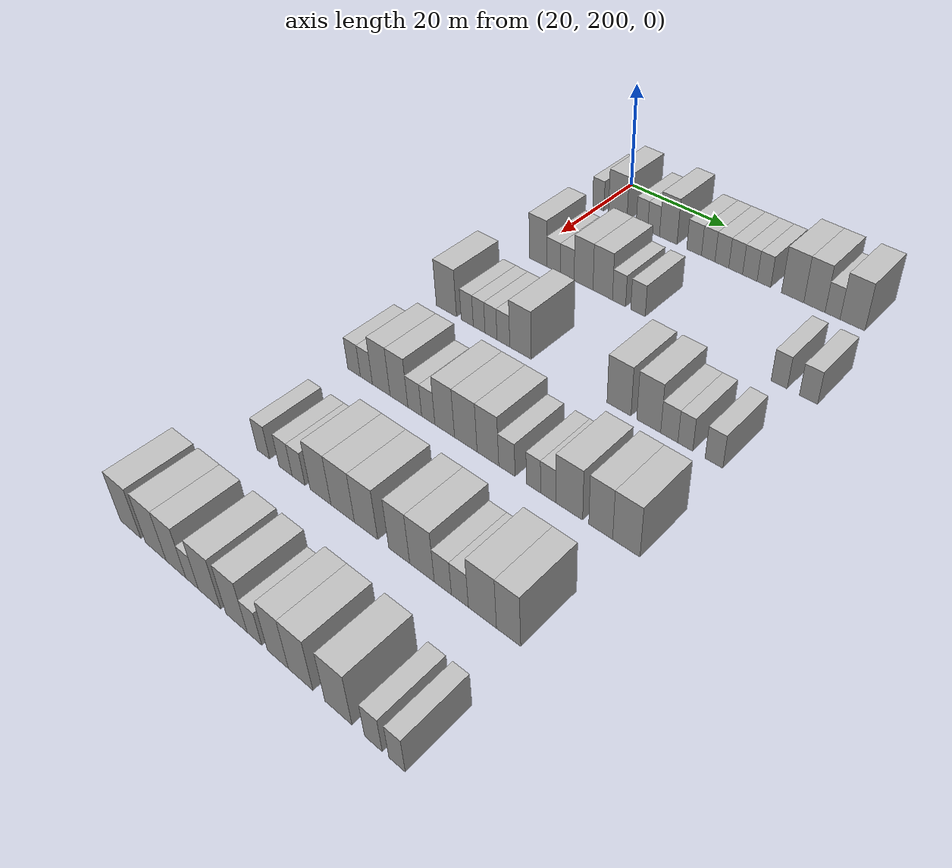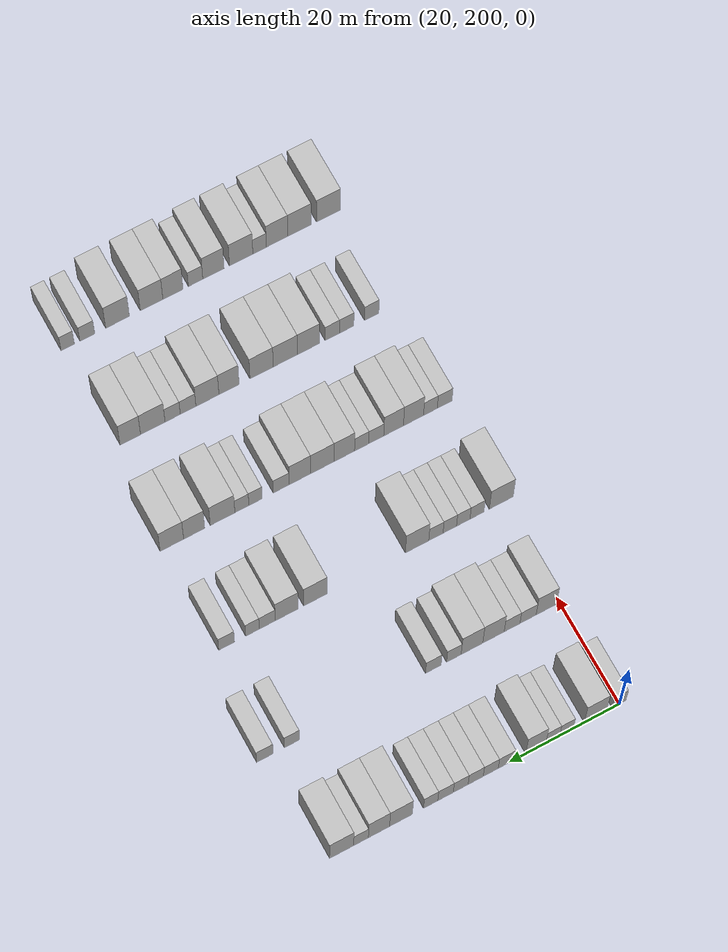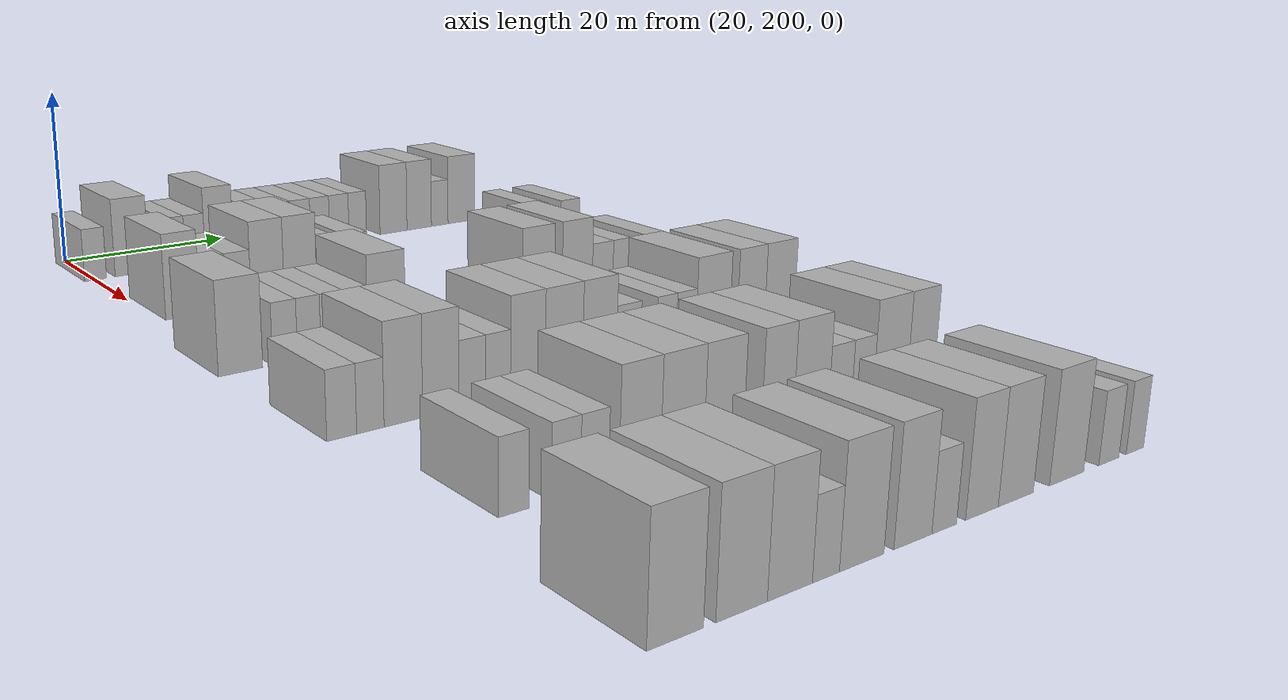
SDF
<sdf version="1.6">
 <world name="default">
  <model name="building_141">
   <static>1</static>
   <pose>25.0000 200.0937 0 0.000000 0.000000 0.000000</pose>
   <link name="link">
    <pose>0 0 3.00 0 0 0</pose>
    <collision name="collision"><geometry><box><size>10.0000 2.5345 6.0000</size></box></geometry></collision>
    <visual name="visual">
     <cast_shadows>0</cast_shadows>
     <geometry><box><size>10.0000 2.5345 6.0000</size></box></geometry>
     <material>
      <script>
       <uri>model://HANNAS_wall/materials/scripts</uri>
       <uri>model://HANNAS_wall/materials/textures</uri>
       <name>vrc/HANNAS_wall</name>
      </script>
     </material>
    </visual>
   </link>
  </model>
  <model name="building_142">
   <static>1</static>
   <pose>25.0000 204.3866 0 0.000000 0.000000 0.000000</pose>
   <link name="link">
    <pose>0 0 4.50 0 0 0</pose>
    <collision name="collision"><geometry><box><size>10.0000 4.0513 9.0000</size></box></geometry></collision>
    <visual name="visual">
     <cast_shadows>0</cast_shadows>
     <geometry><box><size>10.0000 4.0513 9.0000</size></box></geometry>
     <material>
      <script>
       <uri>model://HANNAS_wall/materials/scripts</uri>
       <uri>model://HANNAS_wall/materials/textures</uri>
       <name>vrc/HANNAS_wall</name>
      </script>
     </material>
    </visual>
   </link>
  </model>
  <model name="building_143">
   <static>1</static>
   <pose>25.0000 209.6426 0 0.000000 0.000000 0.000000</pose>
   <link name="link">
    <pose>0 0 3.00 0 0 0</pose>
    <collision name="collision"><geometry><box><size>10.0000 2.4606 6.0000</size></box></geometry></collision>
    <visual name="visual">
     <cast_shadows>0</cast_shadows>
     <geometry><box><size>10.0000 2.4606 6.0000</size></box></geometry>
     <material>
      <script>
       <uri>model://HANNAS_wall/materials/scripts</uri>
       <uri>model://HANNAS_wall/materials/textures</uri>
       <name>vrc/HANNAS_wall</name>
      </script>
     </material>
    </visual>
   </link>
  </model>
  <model name="building_144">
   <static>1</static>
   <pose>25.0000 212.1279 0 0.000000 0.000000 0.000000</pose>
   <link name="link">
    <pose>0 0 3.00 0 0 0</pose>
    <collision name="collision"><geometry><box><size>10.0000 2.5100 6.0000</size></box></geometry></collision>
    <visual name="visual">
     <cast_shadows>0</cast_shadows>
     <geometry><box><size>10.0000 2.5100 6.0000</size></box></geometry>
     <material>
      <script>
       <uri>model://HANNAS_wall/materials/scripts</uri>
       <uri>model://HANNAS_wall/materials/textures</uri>
       <name>vrc/HANNAS_wall</name>
      </script>
     </material>
    </visual>
   </link>
  </model>
  <model name="building_145">
   <static>1</static>
   <pose>25.0000 215.2082 0 0.000000 0.000000 0.000000</pose>
   <link name="link">
    <pose>0 0 4.50 0 0 0</pose>
    <collision name="collision"><geometry><box><size>10.0000 3.6506 9.0000</size></box></geometry></collision>
    <visual name="visual">
     <cast_shadows>0</cast_shadows>
     <geometry><box><size>10.0000 3.6506 9.0000</size></box></geometry>
     <material>
      <script>
       <uri>model://HANNAS_wall/materials/scripts</uri>
       <uri>model://HANNAS_wall/materials/textures</uri>
       <name>vrc/HANNAS_wall</name>
      </script>
     </material>
    </visual>
   </link>
  </model>
  <model name="building_146">
   <static>1</static>
   <pose>25.0000 220.5173 0 0.000000 0.000000 0.000000</pose>
   <link name="link">
    <pose>0 0 3.00 0 0 0</pose>
    <collision name="collision"><geometry><box><size>10.0000 2.9675 6.0000</size></box></geometry></collision>
    <visual name="visual">
     <cast_shadows>0</cast_shadows>
     <geometry><box><size>10.0000 2.9675 6.0000</size></box></geometry>
     <material>
      <script>
       <uri>model://HANNAS_wall/materials/scripts</uri>
       <uri>model://HANNAS_wall/materials/textures</uri>
       <name>vrc/HANNAS_wall</name>
      </script>
     </material>
    </visual>
   </link>
  </model>
  <model name="building_147">
   <static>1</static>
   <pose>25.0000 223.3481 0 0.000000 0.000000 0.000000</pose>
   <link name="link">
    <pose>0 0 3.00 0 0 0</pose>
    <collision name="collision"><geometry><box><size>10.0000 2.6942 6.0000</size></box></geometry></collision>
    <visual name="visual">
     <cast_shadows>0</cast_shadows>
     <geometry><box><size>10.0000 2.6942 6.0000</size></box></geometry>
     <material>
      <script>
       <uri>model://HANNAS_wall/materials/scripts</uri>
       <uri>model://HANNAS_wall/materials/textures</uri>
       <name>vrc/HANNAS_wall</name>
      </script>
     </material>
    </visual>
   </link>
  </model>
  <model name="building_148">
   <static>1</static>
   <pose>25.0000 226.0528 0 0.000000 0.000000 0.000000</pose>
   <link name="link">
    <pose>0 0 3.00 0 0 0</pose>
    <collision name="collision"><geometry><box><size>10.0000 2.7152 6.0000</size></box></geometry></collision>
    <visual name="visual">
     <cast_shadows>0</cast_shadows>
     <geometry><box><size>10.0000 2.7152 6.0000</size></box></geometry>
     <material>
      <script>
       <uri>model://HANNAS_wall/materials/scripts</uri>
       <uri>model://HANNAS_wall/materials/textures</uri>
       <name>vrc/HANNAS_wall</name>
      </script>
     </material>
    </visual>
   </link>
  </model>
  <model name="building_149">
   <static>1</static>
   <pose>25.0000 228.7446 0 0.000000 0.000000 0.000000</pose>
   <link name="link">
    <pose>0 0 3.00 0 0 0</pose>
    <collision name="collision"><geometry><box><size>10.0000 2.6684 6.0000</size></box></geometry></collision>
    <visual name="visual">
     <cast_shadows>0</cast_shadows>
     <geometry><box><size>10.0000 2.6684 6.0000</size></box></geometry>
     <material>
      <script>
       <uri>model://HANNAS_wall/materials/scripts</uri>
       <uri>model://HANNAS_wall/materials/textures</uri>
       <name>vrc/HANNAS_wall</name>
      </script>
     </material>
    </visual>
   </link>
  </model>
  <model name="building_150">
   <static>1</static>
   <pose>25.0000 231.4614 0 0.000000 0.000000 0.000000</pose>
   <link name="link">
    <pose>0 0 3.00 0 0 0</pose>
    <collision name="collision"><geometry><box><size>10.0000 2.7652 6.0000</size></box></geometry></collision>
    <visual name="visual">
     <cast_shadows>0</cast_shadows>
     <geometry><box><size>10.0000 2.7652 6.0000</size></box></geometry>
     <material>
      <script>
       <uri>model://HANNAS_wall/materials/scripts</uri>
       <uri>model://HANNAS_wall/materials/textures</uri>
       <name>vrc/HANNAS_wall</name>
      </script>
     </material>
    </visual>
   </link>
  </model>
  <model name="building_151">
   <static>1</static>
   <pose>25.0000 234.1210 0 0.000000 0.000000 0.000000</pose>
   <link name="link">
    <pose>0 0 3.00 0 0 0</pose>
    <collision name="collision"><geometry><box><size>10.0000 2.5541 6.0000</size></box></geometry></collision>
    <visual name="visual">
     <cast_shadows>0</cast_shadows>
     <geometry><box><size>10.0000 2.5541 6.0000</size></box></geometry>
     <material>
      <script>
       <uri>model://HANNAS_wall/materials/scripts</uri>
       <uri>model://HANNAS_wall/materials/textures</uri>
       <name>vrc/HANNAS_wall</name>
      </script>
     </material>
    </visual>
   </link>
  </model>
  <model name="building_152">
   <static>1</static>
   <pose>25.0000 239.4312 0 0.000000 0.000000 0.000000</pose>
   <link name="link">
    <pose>0 0 4.50 0 0 0</pose>
    <collision name="collision"><geometry><box><size>10.0000 4.0662 9.0000</size></box></geometry></collision>
    <visual name="visual">
     <cast_shadows>0</cast_shadows>
     <geometry><box><size>10.0000 4.0662 9.0000</size></box></geometry>
     <material>
      <script>
       <uri>model://HANNAS_wall/materials/scripts</uri>
       <uri>model://HANNAS_wall/materials/textures</uri>
       <name>vrc/HANNAS_wall</name>
      </script>
     </material>
    </visual>
   </link>
  </model>
  <model name="building_153">
   <static>1</static>
   <pose>25.0000 243.3535 0 0.000000 0.000000 0.000000</pose>
   <link name="link">
    <pose>0 0 4.50 0 0 0</pose>
    <collision name="collision"><geometry><box><size>10.0000 3.7784 9.0000</size></box></geometry></collision>
    <visual name="visual">
     <cast_shadows>0</cast_shadows>
     <geometry><box><size>10.0000 3.7784 9.0000</size></box></geometry>
     <material>
      <script>
       <uri>model://HANNAS_wall/materials/scripts</uri>
       <uri>model://HANNAS_wall/materials/textures</uri>
       <name>vrc/HANNAS_wall</name>
      </script>
     </material>
    </visual>
   </link>
  </model>
  <model name="building_154">
   <static>1</static>
   <pose>25.0000 246.5538 0 0.000000 0.000000 0.000000</pose>
   <link name="link">
    <pose>0 0 3.00 0 0 0</pose>
    <collision name="collision"><geometry><box><size>10.0000 2.6221 6.0000</size></box></geometry></collision>
    <visual name="visual">
     <cast_shadows>0</cast_shadows>
     <geometry><box><size>10.0000 2.6221 6.0000</size></box></geometry>
     <material>
      <script>
       <uri>model://HANNAS_wall/materials/scripts</uri>
       <uri>model://HANNAS_wall/materials/textures</uri>
       <name>vrc/HANNAS_wall</name>
      </script>
     </material>
    </visual>
   </link>
  </model>
  <model name="building_155">
   <static>1</static>
   <pose>25.0000 250.0021 0 0.000000 0.000000 0.000000</pose>
   <link name="link">
    <pose>0 0 4.50 0 0 0</pose>
    <collision name="collision"><geometry><box><size>10.0000 4.2746 9.0000</size></box></geometry></collision>
    <visual name="visual">
     <cast_shadows>0</cast_shadows>
     <geometry><box><size>10.0000 4.2746 9.0000</size></box></geometry>
     <material>
      <script>
       <uri>model://HANNAS_wall/materials/scripts</uri>
       <uri>model://HANNAS_wall/materials/textures</uri>
       <name>vrc/HANNAS_wall</name>
      </script>
     </material>
    </visual>
   </link>
  </model>
  <model name="building_318">
   <static>1</static>
   <pose>44.0000 202.5043 0 0.000000 0.000000 0.000000</pose>
   <link name="link">
    <pose>0 0 4.50 0 0 0</pose>
    <collision name="collision"><geometry><box><size>10.0000 3.7328 9.0000</size></box></geometry></collision>
    <visual name="visual">
     <cast_shadows>0</cast_shadows>
     <geometry><box><size>10.0000 3.7328 9.0000</size></box></geometry>
     <material>
      <script>
       <uri>model://HANNAS_wall/materials/scripts</uri>
       <uri>model://HANNAS_wall/materials/textures</uri>
       <name>vrc/HANNAS_wall</name>
      </script>
     </material>
    </visual>
   </link>
  </model>
  <model name="building_319">
   <static>1</static>
   <pose>44.0000 205.8429 0 0.000000 0.000000 0.000000</pose>
   <link name="link">
    <pose>0 0 3.00 0 0 0</pose>
    <collision name="collision"><geometry><box><size>10.0000 2.9442 6.0000</size></box></geometry></collision>
    <visual name="visual">
     <cast_shadows>0</cast_shadows>
     <geometry><box><size>10.0000 2.9442 6.0000</size></box></geometry>
     <material>
      <script>
       <uri>model://HANNAS_wall/materials/scripts</uri>
       <uri>model://HANNAS_wall/materials/textures</uri>
       <name>vrc/HANNAS_wall</name>
      </script>
     </material>
    </visual>
   </link>
  </model>
  <model name="building_320">
   <static>1</static>
   <pose>44.0000 208.7605 0 0.000000 0.000000 0.000000</pose>
   <link name="link">
    <pose>0 0 3.00 0 0 0</pose>
    <collision name="collision"><geometry><box><size>10.0000 2.8910 6.0000</size></box></geometry></collision>
    <visual name="visual">
     <cast_shadows>0</cast_shadows>
     <geometry><box><size>10.0000 2.8910 6.0000</size></box></geometry>
     <material>
      <script>
       <uri>model://HANNAS_wall/materials/scripts</uri>
       <uri>model://HANNAS_wall/materials/textures</uri>
       <name>vrc/HANNAS_wall</name>
      </script>
     </material>
    </visual>
   </link>
  </model>
  <model name="building_321">
   <static>1</static>
   <pose>44.0000 212.1568 0 0.000000 0.000000 0.000000</pose>
   <link name="link">
    <pose>0 0 4.50 0 0 0</pose>
    <collision name="collision"><geometry><box><size>10.0000 3.9018 9.0000</size></box></geometry></collision>
    <visual name="visual">
     <cast_shadows>0</cast_shadows>
     <geometry><box><size>10.0000 3.9018 9.0000</size></box></geometry>
     <material>
      <script>
       <uri>model://HANNAS_wall/materials/scripts</uri>
       <uri>model://HANNAS_wall/materials/textures</uri>
       <name>vrc/HANNAS_wall</name>
      </script>
     </material>
    </visual>
   </link>
  </model>
  <model name="building_322">
   <static>1</static>
   <pose>44.0000 216.0781 0 0.000000 0.000000 0.000000</pose>
   <link name="link">
    <pose>0 0 4.50 0 0 0</pose>
    <collision name="collision"><geometry><box><size>10.0000 3.9406 9.0000</size></box></geometry></collision>
    <visual name="visual">
     <cast_shadows>0</cast_shadows>
     <geometry><box><size>10.0000 3.9406 9.0000</size></box></geometry>
     <material>
      <script>
       <uri>model://HANNAS_wall/materials/scripts</uri>
       <uri>model://HANNAS_wall/materials/textures</uri>
       <name>vrc/HANNAS_wall</name>
      </script>
     </material>
    </visual>
   </link>
  </model>
  <model name="building_323">
   <static>1</static>
   <pose>44.0000 219.3611 0 0.000000 0.000000 0.000000</pose>
   <link name="link">
    <pose>0 0 3.00 0 0 0</pose>
    <collision name="collision"><geometry><box><size>10.0000 2.6255 6.0000</size></box></geometry></collision>
    <visual name="visual">
     <cast_shadows>0</cast_shadows>
     <geometry><box><size>10.0000 2.6255 6.0000</size></box></geometry>
     <material>
      <script>
       <uri>model://HANNAS_wall/materials/scripts</uri>
       <uri>model://HANNAS_wall/materials/textures</uri>
       <name>vrc/HANNAS_wall</name>
      </script>
     </material>
    </visual>
   </link>
  </model>
  <model name="building_324">
   <static>1</static>
   <pose>44.0000 223.0894 0 0.000000 0.000000 0.000000</pose>
   <link name="link">
    <pose>0 0 3.00 0 0 0</pose>
    <collision name="collision"><geometry><box><size>10.0000 2.8310 6.0000</size></box></geometry></collision>
    <visual name="visual">
     <cast_shadows>0</cast_shadows>
     <geometry><box><size>10.0000 2.8310 6.0000</size></box></geometry>
     <material>
      <script>
       <uri>model://HANNAS_wall/materials/scripts</uri>
       <uri>model://HANNAS_wall/materials/textures</uri>
       <name>vrc/HANNAS_wall</name>
      </script>
     </material>
    </visual>
   </link>
  </model>
  <model name="building_325">
   <static>1</static>
   <pose>44.0000 248.5497 0 0.000000 0.000000 0.000000</pose>
   <link name="link">
    <pose>0 0 3.00 0 0 0</pose>
    <collision name="collision"><geometry><box><size>10.0000 2.6965 6.0000</size></box></geometry></collision>
    <visual name="visual">
     <cast_shadows>0</cast_shadows>
     <geometry><box><size>10.0000 2.6965 6.0000</size></box></geometry>
     <material>
      <script>
       <uri>model://HANNAS_wall/materials/scripts</uri>
       <uri>model://HANNAS_wall/materials/textures</uri>
       <name>vrc/HANNAS_wall</name>
      </script>
     </material>
    </visual>
   </link>
  </model>
  <model name="building_326">
   <static>1</static>
   <pose>44.0000 253.3750 0 0.000000 0.000000 0.000000</pose>
   <link name="link">
    <pose>0 0 3.00 0 0 0</pose>
    <collision name="collision"><geometry><box><size>10.0000 2.9540 6.0000</size></box></geometry></collision>
    <visual name="visual">
     <cast_shadows>0</cast_shadows>
     <geometry><box><size>10.0000 2.9540 6.0000</size></box></geometry>
     <material>
      <script>
       <uri>model://HANNAS_wall/materials/scripts</uri>
       <uri>model://HANNAS_wall/materials/textures</uri>
       <name>vrc/HANNAS_wall</name>
      </script>
     </material>
    </visual>
   </link>
  </model>
  <model name="building_492">
   <static>1</static>
   <pose>63.0000 200.0264 0 0.000000 0.000000 0.000000</pose>
   <link name="link">
    <pose>0 0 4.50 0 0 0</pose>
    <collision name="collision"><geometry><box><size>10.0000 4.3981 9.0000</size></box></geometry></collision>
    <visual name="visual">
     <cast_shadows>0</cast_shadows>
     <geometry><box><size>10.0000 4.3981 9.0000</size></box></geometry>
     <material>
      <script>
       <uri>model://HANNAS_wall/materials/scripts</uri>
       <uri>model://HANNAS_wall/materials/textures</uri>
       <name>vrc/HANNAS_wall</name>
      </script>
     </material>
    </visual>
   </link>
  </model>
  <model name="building_493">
   <static>1</static>
   <pose>63.0000 204.5122 0 0.000000 0.000000 0.000000</pose>
   <link name="link">
    <pose>0 0 3.00 0 0 0</pose>
    <collision name="collision"><geometry><box><size>10.0000 2.5735 6.0000</size></box></geometry></collision>
    <visual name="visual">
     <cast_shadows>0</cast_shadows>
     <geometry><box><size>10.0000 2.5735 6.0000</size></box></geometry>
     <material>
      <script>
       <uri>model://HANNAS_wall/materials/scripts</uri>
       <uri>model://HANNAS_wall/materials/textures</uri>
       <name>vrc/HANNAS_wall</name>
      </script>
     </material>
    </visual>
   </link>
  </model>
  <model name="building_494">
   <static>1</static>
   <pose>63.0000 207.0329 0 0.000000 0.000000 0.000000</pose>
   <link name="link">
    <pose>0 0 3.00 0 0 0</pose>
    <collision name="collision"><geometry><box><size>10.0000 2.4679 6.0000</size></box></geometry></collision>
    <visual name="visual">
     <cast_shadows>0</cast_shadows>
     <geometry><box><size>10.0000 2.4679 6.0000</size></box></geometry>
     <material>
      <script>
       <uri>model://HANNAS_wall/materials/scripts</uri>
       <uri>model://HANNAS_wall/materials/textures</uri>
       <name>vrc/HANNAS_wall</name>
      </script>
     </material>
    </visual>
   </link>
  </model>
  <model name="building_495">
   <static>1</static>
   <pose>63.0000 209.5050 0 0.000000 0.000000 0.000000</pose>
   <link name="link">
    <pose>0 0 3.00 0 0 0</pose>
    <collision name="collision"><geometry><box><size>10.0000 2.4763 6.0000</size></box></geometry></collision>
    <visual name="visual">
     <cast_shadows>0</cast_shadows>
     <geometry><box><size>10.0000 2.4763 6.0000</size></box></geometry>
     <material>
      <script>
       <uri>model://HANNAS_wall/materials/scripts</uri>
       <uri>model://HANNAS_wall/materials/textures</uri>
       <name>vrc/HANNAS_wall</name>
      </script>
     </material>
    </visual>
   </link>
  </model>
  <model name="building_496">
   <static>1</static>
   <pose>63.0000 212.0467 0 0.000000 0.000000 0.000000</pose>
   <link name="link">
    <pose>0 0 3.00 0 0 0</pose>
    <collision name="collision"><geometry><box><size>10.0000 2.6070 6.0000</size></box></geometry></collision>
    <visual name="visual">
     <cast_shadows>0</cast_shadows>
     <geometry><box><size>10.0000 2.6070 6.0000</size></box></geometry>
     <material>
      <script>
       <uri>model://HANNAS_wall/materials/scripts</uri>
       <uri>model://HANNAS_wall/materials/textures</uri>
       <name>vrc/HANNAS_wall</name>
      </script>
     </material>
    </visual>
   </link>
  </model>
  <model name="building_497">
   <static>1</static>
   <pose>63.0000 215.4934 0 0.000000 0.000000 0.000000</pose>
   <link name="link">
    <pose>0 0 4.50 0 0 0</pose>
    <collision name="collision"><geometry><box><size>10.0000 4.2864 9.0000</size></box></geometry></collision>
    <visual name="visual">
     <cast_shadows>0</cast_shadows>
     <geometry><box><size>10.0000 4.2864 9.0000</size></box></geometry>
     <material>
      <script>
       <uri>model://HANNAS_wall/materials/scripts</uri>
       <uri>model://HANNAS_wall/materials/textures</uri>
       <name>vrc/HANNAS_wall</name>
      </script>
     </material>
    </visual>
   </link>
  </model>
  <model name="building_498">
   <static>1</static>
   <pose>63.0000 234.0238 0 0.000000 0.000000 0.000000</pose>
   <link name="link">
    <pose>0 0 4.50 0 0 0</pose>
    <collision name="collision"><geometry><box><size>10.0000 4.2581 9.0000</size></box></geometry></collision>
    <visual name="visual">
     <cast_shadows>0</cast_shadows>
     <geometry><box><size>10.0000 4.2581 9.0000</size></box></geometry>
     <material>
      <script>
       <uri>model://HANNAS_wall/materials/scripts</uri>
       <uri>model://HANNAS_wall/materials/textures</uri>
       <name>vrc/HANNAS_wall</name>
      </script>
     </material>
    </visual>
   </link>
  </model>
  <model name="building_499">
   <static>1</static>
   <pose>63.0000 239.2120 0 0.000000 0.000000 0.000000</pose>
   <link name="link">
    <pose>0 0 4.50 0 0 0</pose>
    <collision name="collision"><geometry><box><size>10.0000 4.1184 9.0000</size></box></geometry></collision>
    <visual name="visual">
     <cast_shadows>0</cast_shadows>
     <geometry><box><size>10.0000 4.1184 9.0000</size></box></geometry>
     <material>
      <script>
       <uri>model://HANNAS_wall/materials/scripts</uri>
       <uri>model://HANNAS_wall/materials/textures</uri>
       <name>vrc/HANNAS_wall</name>
      </script>
     </material>
    </visual>
   </link>
  </model>
  <model name="building_500">
   <static>1</static>
   <pose>63.0000 242.7148 0 0.000000 0.000000 0.000000</pose>
   <link name="link">
    <pose>0 0 3.00 0 0 0</pose>
    <collision name="collision"><geometry><box><size>10.0000 2.8872 6.0000</size></box></geometry></collision>
    <visual name="visual">
     <cast_shadows>0</cast_shadows>
     <geometry><box><size>10.0000 2.8872 6.0000</size></box></geometry>
     <material>
      <script>
       <uri>model://HANNAS_wall/materials/scripts</uri>
       <uri>model://HANNAS_wall/materials/textures</uri>
       <name>vrc/HANNAS_wall</name>
      </script>
     </material>
    </visual>
   </link>
  </model>
  <model name="building_501">
   <static>1</static>
   <pose>63.0000 245.3902 0 0.000000 0.000000 0.000000</pose>
   <link name="link">
    <pose>0 0 3.00 0 0 0</pose>
    <collision name="collision"><geometry><box><size>10.0000 2.4635 6.0000</size></box></geometry></collision>
    <visual name="visual">
     <cast_shadows>0</cast_shadows>
     <geometry><box><size>10.0000 2.4635 6.0000</size></box></geometry>
     <material>
      <script>
       <uri>model://HANNAS_wall/materials/scripts</uri>
       <uri>model://HANNAS_wall/materials/textures</uri>
       <name>vrc/HANNAS_wall</name>
      </script>
     </material>
    </visual>
   </link>
  </model>
  <model name="building_502">
   <static>1</static>
   <pose>63.0000 250.0443 0 0.000000 0.000000 0.000000</pose>
   <link name="link">
    <pose>0 0 3.00 0 0 0</pose>
    <collision name="collision"><geometry><box><size>10.0000 2.8449 6.0000</size></box></geometry></collision>
    <visual name="visual">
     <cast_shadows>0</cast_shadows>
     <geometry><box><size>10.0000 2.8449 6.0000</size></box></geometry>
     <material>
      <script>
       <uri>model://HANNAS_wall/materials/scripts</uri>
       <uri>model://HANNAS_wall/materials/textures</uri>
       <name>vrc/HANNAS_wall</name>
      </script>
     </material>
    </visual>
   </link>
  </model>
  <model name="building_642">
   <static>1</static>
   <pose>82.0000 199.8489 0 0.000000 0.000000 0.000000</pose>
   <link name="link">
    <pose>0 0 3.00 0 0 0</pose>
    <collision name="collision"><geometry><box><size>10.0000 2.7290 6.0000</size></box></geometry></collision>
    <visual name="visual">
     <cast_shadows>0</cast_shadows>
     <geometry><box><size>10.0000 2.7290 6.0000</size></box></geometry>
     <material>
      <script>
       <uri>model://HANNAS_wall/materials/scripts</uri>
       <uri>model://HANNAS_wall/materials/textures</uri>
       <name>vrc/HANNAS_wall</name>
      </script>
     </material>
    </visual>
   </link>
  </model>
  <model name="building_643">
   <static>1</static>
   <pose>82.0000 202.4907 0 0.000000 0.000000 0.000000</pose>
   <link name="link">
    <pose>0 0 3.00 0 0 0</pose>
    <collision name="collision"><geometry><box><size>10.0000 2.5545 6.0000</size></box></geometry></collision>
    <visual name="visual">
     <cast_shadows>0</cast_shadows>
     <geometry><box><size>10.0000 2.5545 6.0000</size></box></geometry>
     <material>
      <script>
       <uri>model://HANNAS_wall/materials/scripts</uri>
       <uri>model://HANNAS_wall/materials/textures</uri>
       <name>vrc/HANNAS_wall</name>
      </script>
     </material>
    </visual>
   </link>
  </model>
  <model name="building_644">
   <static>1</static>
   <pose>82.0000 205.6250 0 0.000000 0.000000 0.000000</pose>
   <link name="link">
    <pose>0 0 4.50 0 0 0</pose>
    <collision name="collision"><geometry><box><size>10.0000 3.7142 9.0000</size></box></geometry></collision>
    <visual name="visual">
     <cast_shadows>0</cast_shadows>
     <geometry><box><size>10.0000 3.7142 9.0000</size></box></geometry>
     <material>
      <script>
       <uri>model://HANNAS_wall/materials/scripts</uri>
       <uri>model://HANNAS_wall/materials/textures</uri>
       <name>vrc/HANNAS_wall</name>
      </script>
     </material>
    </visual>
   </link>
  </model>
  <model name="building_645">
   <static>1</static>
   <pose>82.0000 209.3065 0 0.000000 0.000000 0.000000</pose>
   <link name="link">
    <pose>0 0 4.50 0 0 0</pose>
    <collision name="collision"><geometry><box><size>10.0000 3.6488 9.0000</size></box></geometry></collision>
    <visual name="visual">
     <cast_shadows>0</cast_shadows>
     <geometry><box><size>10.0000 3.6488 9.0000</size></box></geometry>
     <material>
      <script>
       <uri>model://HANNAS_wall/materials/scripts</uri>
       <uri>model://HANNAS_wall/materials/textures</uri>
       <name>vrc/HANNAS_wall</name>
      </script>
     </material>
    </visual>
   </link>
  </model>
  <model name="building_646">
   <static>1</static>
   <pose>82.0000 212.5142 0 0.000000 0.000000 0.000000</pose>
   <link name="link">
    <pose>0 0 3.00 0 0 0</pose>
    <collision name="collision"><geometry><box><size>10.0000 2.7667 6.0000</size></box></geometry></collision>
    <visual name="visual">
     <cast_shadows>0</cast_shadows>
     <geometry><box><size>10.0000 2.7667 6.0000</size></box></geometry>
     <material>
      <script>
       <uri>model://HANNAS_wall/materials/scripts</uri>
       <uri>model://HANNAS_wall/materials/textures</uri>
       <name>vrc/HANNAS_wall</name>
      </script>
     </material>
    </visual>
   </link>
  </model>
  <model name="building_647">
   <static>1</static>
   <pose>82.0000 215.2018 0 0.000000 0.000000 0.000000</pose>
   <link name="link">
    <pose>0 0 3.00 0 0 0</pose>
    <collision name="collision"><geometry><box><size>10.0000 2.6085 6.0000</size></box></geometry></collision>
    <visual name="visual">
     <cast_shadows>0</cast_shadows>
     <geometry><box><size>10.0000 2.6085 6.0000</size></box></geometry>
     <material>
      <script>
       <uri>model://HANNAS_wall/materials/scripts</uri>
       <uri>model://HANNAS_wall/materials/textures</uri>
       <name>vrc/HANNAS_wall</name>
      </script>
     </material>
    </visual>
   </link>
  </model>
  <model name="building_648">
   <static>1</static>
   <pose>82.0000 218.4005 0 0.000000 0.000000 0.000000</pose>
   <link name="link">
    <pose>0 0 4.50 0 0 0</pose>
    <collision name="collision"><geometry><box><size>10.0000 3.7890 9.0000</size></box></geometry></collision>
    <visual name="visual">
     <cast_shadows>0</cast_shadows>
     <geometry><box><size>10.0000 3.7890 9.0000</size></box></geometry>
     <material>
      <script>
       <uri>model://HANNAS_wall/materials/scripts</uri>
       <uri>model://HANNAS_wall/materials/textures</uri>
       <name>vrc/HANNAS_wall</name>
      </script>
     </material>
    </visual>
   </link>
  </model>
  <model name="building_649">
   <static>1</static>
   <pose>82.0000 222.4205 0 0.000000 0.000000 0.000000</pose>
   <link name="link">
    <pose>0 0 4.50 0 0 0</pose>
    <collision name="collision"><geometry><box><size>10.0000 4.2511 9.0000</size></box></geometry></collision>
    <visual name="visual">
     <cast_shadows>0</cast_shadows>
     <geometry><box><size>10.0000 4.2511 9.0000</size></box></geometry>
     <material>
      <script>
       <uri>model://HANNAS_wall/materials/scripts</uri>
       <uri>model://HANNAS_wall/materials/textures</uri>
       <name>vrc/HANNAS_wall</name>
      </script>
     </material>
    </visual>
   </link>
  </model>
  <model name="building_650">
   <static>1</static>
   <pose>82.0000 226.5253 0 0.000000 0.000000 0.000000</pose>
   <link name="link">
    <pose>0 0 4.50 0 0 0</pose>
    <collision name="collision"><geometry><box><size>10.0000 3.9585 9.0000</size></box></geometry></collision>
    <visual name="visual">
     <cast_shadows>0</cast_shadows>
     <geometry><box><size>10.0000 3.9585 9.0000</size></box></geometry>
     <material>
      <script>
       <uri>model://HANNAS_wall/materials/scripts</uri>
       <uri>model://HANNAS_wall/materials/textures</uri>
       <name>vrc/HANNAS_wall</name>
      </script>
     </material>
    </visual>
   </link>
  </model>
  <model name="building_651">
   <static>1</static>
   <pose>82.0000 229.9619 0 0.000000 0.000000 0.000000</pose>
   <link name="link">
    <pose>0 0 3.00 0 0 0</pose>
    <collision name="collision"><geometry><box><size>10.0000 2.9147 6.0000</size></box></geometry></collision>
    <visual name="visual">
     <cast_shadows>0</cast_shadows>
     <geometry><box><size>10.0000 2.9147 6.0000</size></box></geometry>
     <material>
      <script>
       <uri>model://HANNAS_wall/materials/scripts</uri>
       <uri>model://HANNAS_wall/materials/textures</uri>
       <name>vrc/HANNAS_wall</name>
      </script>
     </material>
    </visual>
   </link>
  </model>
  <model name="building_652">
   <static>1</static>
   <pose>82.0000 234.6416 0 0.000000 0.000000 0.000000</pose>
   <link name="link">
    <pose>0 0 3.00 0 0 0</pose>
    <collision name="collision"><geometry><box><size>10.0000 2.4445 6.0000</size></box></geometry></collision>
    <visual name="visual">
     <cast_shadows>0</cast_shadows>
     <geometry><box><size>10.0000 2.4445 6.0000</size></box></geometry>
     <material>
      <script>
       <uri>model://HANNAS_wall/materials/scripts</uri>
       <uri>model://HANNAS_wall/materials/textures</uri>
       <name>vrc/HANNAS_wall</name>
      </script>
     </material>
    </visual>
   </link>
  </model>
  <model name="building_653">
   <static>1</static>
   <pose>82.0000 237.1351 0 0.000000 0.000000 0.000000</pose>
   <link name="link">
    <pose>0 0 3.00 0 0 0</pose>
    <collision name="collision"><geometry><box><size>10.0000 2.5425 6.0000</size></box></geometry></collision>
    <visual name="visual">
     <cast_shadows>0</cast_shadows>
     <geometry><box><size>10.0000 2.5425 6.0000</size></box></geometry>
     <material>
      <script>
       <uri>model://HANNAS_wall/materials/scripts</uri>
       <uri>model://HANNAS_wall/materials/textures</uri>
       <name>vrc/HANNAS_wall</name>
      </script>
     </material>
    </visual>
   </link>
  </model>
  <model name="building_654">
   <static>1</static>
   <pose>82.0000 240.6502 0 0.000000 0.000000 0.000000</pose>
   <link name="link">
    <pose>0 0 4.50 0 0 0</pose>
    <collision name="collision"><geometry><box><size>10.0000 4.4877 9.0000</size></box></geometry></collision>
    <visual name="visual">
     <cast_shadows>0</cast_shadows>
     <geometry><box><size>10.0000 4.4877 9.0000</size></box></geometry>
     <material>
      <script>
       <uri>model://HANNAS_wall/materials/scripts</uri>
       <uri>model://HANNAS_wall/materials/textures</uri>
       <name>vrc/HANNAS_wall</name>
      </script>
     </material>
    </visual>
   </link>
  </model>
  <model name="building_655">
   <static>1</static>
   <pose>82.0000 245.8025 0 0.000000 0.000000 0.000000</pose>
   <link name="link">
    <pose>0 0 4.50 0 0 0</pose>
    <collision name="collision"><geometry><box><size>10.0000 3.8169 9.0000</size></box></geometry></collision>
    <visual name="visual">
     <cast_shadows>0</cast_shadows>
     <geometry><box><size>10.0000 3.8169 9.0000</size></box></geometry>
     <material>
      <script>
       <uri>model://HANNAS_wall/materials/scripts</uri>
       <uri>model://HANNAS_wall/materials/textures</uri>
       <name>vrc/HANNAS_wall</name>
      </script>
     </material>
    </visual>
   </link>
  </model>
  <model name="building_656">
   <static>1</static>
   <pose>82.0000 249.8406 0 0.000000 0.000000 0.000000</pose>
   <link name="link">
    <pose>0 0 4.50 0 0 0</pose>
    <collision name="collision"><geometry><box><size>10.0000 4.2594 9.0000</size></box></geometry></collision>
    <visual name="visual">
     <cast_shadows>0</cast_shadows>
     <geometry><box><size>10.0000 4.2594 9.0000</size></box></geometry>
     <material>
      <script>
       <uri>model://HANNAS_wall/materials/scripts</uri>
       <uri>model://HANNAS_wall/materials/textures</uri>
       <name>vrc/HANNAS_wall</name>
      </script>
     </material>
    </visual>
   </link>
  </model>
  <model name="building_822">
   <static>1</static>
   <pose>101.0000 202.9168 0 0.000000 0.000000 0.000000</pose>
   <link name="link">
    <pose>0 0 3.00 0 0 0</pose>
    <collision name="collision"><geometry><box><size>10.0000 2.6604 6.0000</size></box></geometry></collision>
    <visual name="visual">
     <cast_shadows>0</cast_shadows>
     <geometry><box><size>10.0000 2.6604 6.0000</size></box></geometry>
     <material>
      <script>
       <uri>model://HANNAS_wall/materials/scripts</uri>
       <uri>model://HANNAS_wall/materials/textures</uri>
       <name>vrc/HANNAS_wall</name>
      </script>
     </material>
    </visual>
   </link>
  </model>
  <model name="building_823">
   <static>1</static>
   <pose>101.0000 207.5889 0 0.000000 0.000000 0.000000</pose>
   <link name="link">
    <pose>0 0 3.00 0 0 0</pose>
    <collision name="collision"><geometry><box><size>10.0000 2.6837 6.0000</size></box></geometry></collision>
    <visual name="visual">
     <cast_shadows>0</cast_shadows>
     <geometry><box><size>10.0000 2.6837 6.0000</size></box></geometry>
     <material>
      <script>
       <uri>model://HANNAS_wall/materials/scripts</uri>
       <uri>model://HANNAS_wall/materials/textures</uri>
       <name>vrc/HANNAS_wall</name>
      </script>
     </material>
    </visual>
   </link>
  </model>
  <model name="building_824">
   <static>1</static>
   <pose>101.0000 210.2556 0 0.000000 0.000000 0.000000</pose>
   <link name="link">
    <pose>0 0 3.00 0 0 0</pose>
    <collision name="collision"><geometry><box><size>10.0000 2.6496 6.0000</size></box></geometry></collision>
    <visual name="visual">
     <cast_shadows>0</cast_shadows>
     <geometry><box><size>10.0000 2.6496 6.0000</size></box></geometry>
     <material>
      <script>
       <uri>model://HANNAS_wall/materials/scripts</uri>
       <uri>model://HANNAS_wall/materials/textures</uri>
       <name>vrc/HANNAS_wall</name>
      </script>
     </material>
    </visual>
   </link>
  </model>
  <model name="building_825">
   <static>1</static>
   <pose>101.0000 214.6329 0 0.000000 0.000000 0.000000</pose>
   <link name="link">
    <pose>0 0 4.50 0 0 0</pose>
    <collision name="collision"><geometry><box><size>10.0000 4.1051 9.0000</size></box></geometry></collision>
    <visual name="visual">
     <cast_shadows>0</cast_shadows>
     <geometry><box><size>10.0000 4.1051 9.0000</size></box></geometry>
     <material>
      <script>
       <uri>model://HANNAS_wall/materials/scripts</uri>
       <uri>model://HANNAS_wall/materials/textures</uri>
       <name>vrc/HANNAS_wall</name>
      </script>
     </material>
    </visual>
   </link>
  </model>
  <model name="building_826">
   <static>1</static>
   <pose>101.0000 218.9329 0 0.000000 0.000000 0.000000</pose>
   <link name="link">
    <pose>0 0 4.50 0 0 0</pose>
    <collision name="collision"><geometry><box><size>10.0000 4.4950 9.0000</size></box></geometry></collision>
    <visual name="visual">
     <cast_shadows>0</cast_shadows>
     <geometry><box><size>10.0000 4.4950 9.0000</size></box></geometry>
     <material>
      <script>
       <uri>model://HANNAS_wall/materials/scripts</uri>
       <uri>model://HANNAS_wall/materials/textures</uri>
       <name>vrc/HANNAS_wall</name>
      </script>
     </material>
    </visual>
   </link>
  </model>
  <model name="building_827">
   <static>1</static>
   <pose>101.0000 223.3303 0 0.000000 0.000000 0.000000</pose>
   <link name="link">
    <pose>0 0 4.50 0 0 0</pose>
    <collision name="collision"><geometry><box><size>10.0000 4.2996 9.0000</size></box></geometry></collision>
    <visual name="visual">
     <cast_shadows>0</cast_shadows>
     <geometry><box><size>10.0000 4.2996 9.0000</size></box></geometry>
     <material>
      <script>
       <uri>model://HANNAS_wall/materials/scripts</uri>
       <uri>model://HANNAS_wall/materials/textures</uri>
       <name>vrc/HANNAS_wall</name>
      </script>
     </material>
    </visual>
   </link>
  </model>
  <model name="building_828">
   <static>1</static>
   <pose>101.0000 229.3354 0 0.000000 0.000000 0.000000</pose>
   <link name="link">
    <pose>0 0 4.50 0 0 0</pose>
    <collision name="collision"><geometry><box><size>10.0000 3.7107 9.0000</size></box></geometry></collision>
    <visual name="visual">
     <cast_shadows>0</cast_shadows>
     <geometry><box><size>10.0000 3.7107 9.0000</size></box></geometry>
     <material>
      <script>
       <uri>model://HANNAS_wall/materials/scripts</uri>
       <uri>model://HANNAS_wall/materials/textures</uri>
       <name>vrc/HANNAS_wall</name>
      </script>
     </material>
    </visual>
   </link>
  </model>
  <model name="building_829">
   <static>1</static>
   <pose>101.0000 233.3048 0 0.000000 0.000000 0.000000</pose>
   <link name="link">
    <pose>0 0 4.50 0 0 0</pose>
    <collision name="collision"><geometry><box><size>10.0000 4.2280 9.0000</size></box></geometry></collision>
    <visual name="visual">
     <cast_shadows>0</cast_shadows>
     <geometry><box><size>10.0000 4.2280 9.0000</size></box></geometry>
     <material>
      <script>
       <uri>model://HANNAS_wall/materials/scripts</uri>
       <uri>model://HANNAS_wall/materials/textures</uri>
       <name>vrc/HANNAS_wall</name>
      </script>
     </material>
    </visual>
   </link>
  </model>
  <model name="building_830">
   <static>1</static>
   <pose>101.0000 236.8545 0 0.000000 0.000000 0.000000</pose>
   <link name="link">
    <pose>0 0 3.00 0 0 0</pose>
    <collision name="collision"><geometry><box><size>10.0000 2.8715 6.0000</size></box></geometry></collision>
    <visual name="visual">
     <cast_shadows>0</cast_shadows>
     <geometry><box><size>10.0000 2.8715 6.0000</size></box></geometry>
     <material>
      <script>
       <uri>model://HANNAS_wall/materials/scripts</uri>
       <uri>model://HANNAS_wall/materials/textures</uri>
       <name>vrc/HANNAS_wall</name>
      </script>
     </material>
    </visual>
   </link>
  </model>
  <model name="building_831">
   <static>1</static>
   <pose>101.0000 239.6783 0 0.000000 0.000000 0.000000</pose>
   <link name="link">
    <pose>0 0 3.00 0 0 0</pose>
    <collision name="collision"><geometry><box><size>10.0000 2.7760 6.0000</size></box></geometry></collision>
    <visual name="visual">
     <cast_shadows>0</cast_shadows>
     <geometry><box><size>10.0000 2.7760 6.0000</size></box></geometry>
     <material>
      <script>
       <uri>model://HANNAS_wall/materials/scripts</uri>
       <uri>model://HANNAS_wall/materials/textures</uri>
       <name>vrc/HANNAS_wall</name>
      </script>
     </material>
    </visual>
   </link>
  </model>
  <model name="building_832">
   <static>1</static>
   <pose>101.0000 243.3039 0 0.000000 0.000000 0.000000</pose>
   <link name="link">
    <pose>0 0 4.50 0 0 0</pose>
    <collision name="collision"><geometry><box><size>10.0000 4.4751 9.0000</size></box></geometry></collision>
    <visual name="visual">
     <cast_shadows>0</cast_shadows>
     <geometry><box><size>10.0000 4.4751 9.0000</size></box></geometry>
     <material>
      <script>
       <uri>model://HANNAS_wall/materials/scripts</uri>
       <uri>model://HANNAS_wall/materials/textures</uri>
       <name>vrc/HANNAS_wall</name>
      </script>
     </material>
    </visual>
   </link>
  </model>
  <model name="building_833">
   <static>1</static>
   <pose>101.0000 247.4135 0 0.000000 0.000000 0.000000</pose>
   <link name="link">
    <pose>0 0 4.50 0 0 0</pose>
    <collision name="collision"><geometry><box><size>10.0000 3.7441 9.0000</size></box></geometry></collision>
    <visual name="visual">
     <cast_shadows>0</cast_shadows>
     <geometry><box><size>10.0000 3.7441 9.0000</size></box></geometry>
     <material>
      <script>
       <uri>model://HANNAS_wall/materials/scripts</uri>
       <uri>model://HANNAS_wall/materials/textures</uri>
       <name>vrc/HANNAS_wall</name>
      </script>
     </material>
    </visual>
   </link>
  </model>
  <model name="building_994">
   <static>1</static>
   <pose>120.0000 200.6112 0 0.000000 0.000000 0.000000</pose>
   <link name="link">
    <pose>0 0 4.50 0 0 0</pose>
    <collision name="collision"><geometry><box><size>10.0000 4.4785 9.0000</size></box></geometry></collision>
    <visual name="visual">
     <cast_shadows>0</cast_shadows>
     <geometry><box><size>10.0000 4.4785 9.0000</size></box></geometry>
     <material>
      <script>
       <uri>model://HANNAS_wall/materials/scripts</uri>
       <uri>model://HANNAS_wall/materials/textures</uri>
       <name>vrc/HANNAS_wall</name>
      </script>
     </material>
    </visual>
   </link>
  </model>
  <model name="building_995">
   <static>1</static>
   <pose>120.0000 206.0292 0 0.000000 0.000000 0.000000</pose>
   <link name="link">
    <pose>0 0 4.50 0 0 0</pose>
    <collision name="collision"><geometry><box><size>10.0000 4.3575 9.0000</size></box></geometry></collision>
    <visual name="visual">
     <cast_shadows>0</cast_shadows>
     <geometry><box><size>10.0000 4.3575 9.0000</size></box></geometry>
     <material>
      <script>
       <uri>model://HANNAS_wall/materials/scripts</uri>
       <uri>model://HANNAS_wall/materials/textures</uri>
       <name>vrc/HANNAS_wall</name>
      </script>
     </material>
    </visual>
   </link>
  </model>
  <model name="building_996">
   <static>1</static>
   <pose>120.0000 210.2204 0 0.000000 0.000000 0.000000</pose>
   <link name="link">
    <pose>0 0 4.50 0 0 0</pose>
    <collision name="collision"><geometry><box><size>10.0000 4.0251 9.0000</size></box></geometry></collision>
    <visual name="visual">
     <cast_shadows>0</cast_shadows>
     <geometry><box><size>10.0000 4.0251 9.0000</size></box></geometry>
     <material>
      <script>
       <uri>model://HANNAS_wall/materials/scripts</uri>
       <uri>model://HANNAS_wall/materials/textures</uri>
       <name>vrc/HANNAS_wall</name>
      </script>
     </material>
    </visual>
   </link>
  </model>
  <model name="building_997">
   <static>1</static>
   <pose>120.0000 213.4966 0 0.000000 0.000000 0.000000</pose>
   <link name="link">
    <pose>0 0 3.00 0 0 0</pose>
    <collision name="collision"><geometry><box><size>10.0000 2.5272 6.0000</size></box></geometry></collision>
    <visual name="visual">
     <cast_shadows>0</cast_shadows>
     <geometry><box><size>10.0000 2.5272 6.0000</size></box></geometry>
     <material>
      <script>
       <uri>model://HANNAS_wall/materials/scripts</uri>
       <uri>model://HANNAS_wall/materials/textures</uri>
       <name>vrc/HANNAS_wall</name>
      </script>
     </material>
    </visual>
   </link>
  </model>
  <model name="building_998">
   <static>1</static>
   <pose>120.0000 216.9351 0 0.000000 0.000000 0.000000</pose>
   <link name="link">
    <pose>0 0 4.50 0 0 0</pose>
    <collision name="collision"><geometry><box><size>10.0000 4.3499 9.0000</size></box></geometry></collision>
    <visual name="visual">
     <cast_shadows>0</cast_shadows>
     <geometry><box><size>10.0000 4.3499 9.0000</size></box></geometry>
     <material>
      <script>
       <uri>model://HANNAS_wall/materials/scripts</uri>
       <uri>model://HANNAS_wall/materials/textures</uri>
       <name>vrc/HANNAS_wall</name>
      </script>
     </material>
    </visual>
   </link>
  </model>
  <model name="building_999">
   <static>1</static>
   <pose>120.0000 222.0880 0 0.000000 0.000000 0.000000</pose>
   <link name="link">
    <pose>0 0 4.50 0 0 0</pose>
    <collision name="collision"><geometry><box><size>10.0000 3.9560 9.0000</size></box></geometry></collision>
    <visual name="visual">
     <cast_shadows>0</cast_shadows>
     <geometry><box><size>10.0000 3.9560 9.0000</size></box></geometry>
     <material>
      <script>
       <uri>model://HANNAS_wall/materials/scripts</uri>
       <uri>model://HANNAS_wall/materials/textures</uri>
       <name>vrc/HANNAS_wall</name>
      </script>
     </material>
    </visual>
   </link>
  </model>
  <model name="building_1000">
   <static>1</static>
   <pose>120.0000 225.4038 0 0.000000 0.000000 0.000000</pose>
   <link name="link">
    <pose>0 0 3.00 0 0 0</pose>
    <collision name="collision"><geometry><box><size>10.0000 2.6755 6.0000</size></box></geometry></collision>
    <visual name="visual">
     <cast_shadows>0</cast_shadows>
     <geometry><box><size>10.0000 2.6755 6.0000</size></box></geometry>
     <material>
      <script>
       <uri>model://HANNAS_wall/materials/scripts</uri>
       <uri>model://HANNAS_wall/materials/textures</uri>
       <name>vrc/HANNAS_wall</name>
      </script>
     </material>
    </visual>
   </link>
  </model>
  <model name="building_1001">
   <static>1</static>
   <pose>120.0000 229.6012 0 0.000000 0.000000 0.000000</pose>
   <link name="link">
    <pose>0 0 4.50 0 0 0</pose>
    <collision name="collision"><geometry><box><size>10.0000 3.7194 9.0000</size></box></geometry></collision>
    <visual name="visual">
     <cast_shadows>0</cast_shadows>
     <geometry><box><size>10.0000 3.7194 9.0000</size></box></geometry>
     <material>
      <script>
       <uri>model://HANNAS_wall/materials/scripts</uri>
       <uri>model://HANNAS_wall/materials/textures</uri>
       <name>vrc/HANNAS_wall</name>
      </script>
     </material>
    </visual>
   </link>
  </model>
  <model name="building_1002">
   <static>1</static>
   <pose>120.0000 233.5493 0 0.000000 0.000000 0.000000</pose>
   <link name="link">
    <pose>0 0 4.50 0 0 0</pose>
    <collision name="collision"><geometry><box><size>10.0000 4.1768 9.0000</size></box></geometry></collision>
    <visual name="visual">
     <cast_shadows>0</cast_shadows>
     <geometry><box><size>10.0000 4.1768 9.0000</size></box></geometry>
     <material>
      <script>
       <uri>model://HANNAS_wall/materials/scripts</uri>
       <uri>model://HANNAS_wall/materials/textures</uri>
       <name>vrc/HANNAS_wall</name>
      </script>
     </material>
    </visual>
   </link>
  </model>
  <model name="building_1003">
   <static>1</static>
   <pose>120.0000 239.8305 0 0.000000 0.000000 0.000000</pose>
   <link name="link">
    <pose>0 0 4.50 0 0 0</pose>
    <collision name="collision"><geometry><box><size>10.0000 4.3857 9.0000</size></box></geometry></collision>
    <visual name="visual">
     <cast_shadows>0</cast_shadows>
     <geometry><box><size>10.0000 4.3857 9.0000</size></box></geometry>
     <material>
      <script>
       <uri>model://HANNAS_wall/materials/scripts</uri>
       <uri>model://HANNAS_wall/materials/textures</uri>
       <name>vrc/HANNAS_wall</name>
      </script>
     </material>
    </visual>
   </link>
  </model>
  <model name="building_1004">
   <static>1</static>
   <pose>120.0000 245.3911 0 0.000000 0.000000 0.000000</pose>
   <link name="link">
    <pose>0 0 3.00 0 0 0</pose>
    <collision name="collision"><geometry><box><size>10.0000 2.7354 6.0000</size></box></geometry></collision>
    <visual name="visual">
     <cast_shadows>0</cast_shadows>
     <geometry><box><size>10.0000 2.7354 6.0000</size></box></geometry>
     <material>
      <script>
       <uri>model://HANNAS_wall/materials/scripts</uri>
       <uri>model://HANNAS_wall/materials/textures</uri>
       <name>vrc/HANNAS_wall</name>
      </script>
     </material>
    </visual>
   </link>
  </model>
  <model name="building_1005">
   <static>1</static>
   <pose>120.0000 248.9869 0 0.000000 0.000000 0.000000</pose>
   <link name="link">
    <pose>0 0 3.00 0 0 0</pose>
    <collision name="collision"><geometry><box><size>10.0000 2.4561 6.0000</size></box></geometry></collision>
    <visual name="visual">
     <cast_shadows>0</cast_shadows>
     <geometry><box><size>10.0000 2.4561 6.0000</size></box></geometry>
     <material>
      <script>
       <uri>model://HANNAS_wall/materials/scripts</uri>
       <uri>model://HANNAS_wall/materials/textures</uri>
       <name>vrc/HANNAS_wall</name>
      </script>
     </material>
    </visual>
   </link>
  </model>
 </world>
</sdf>
